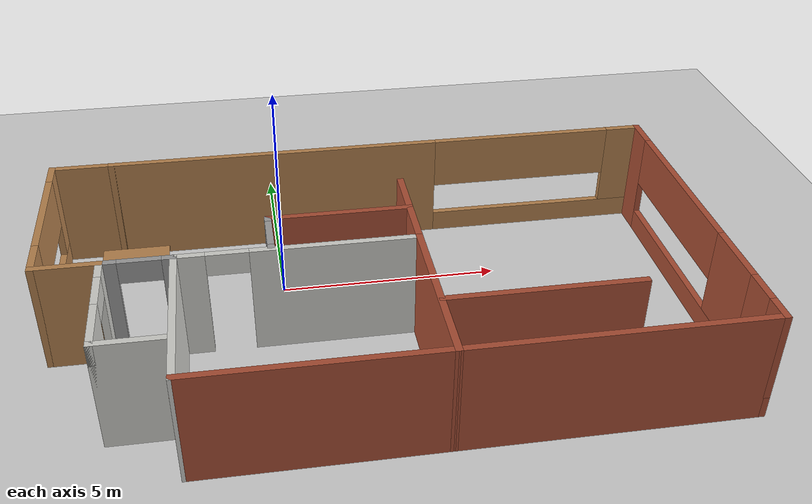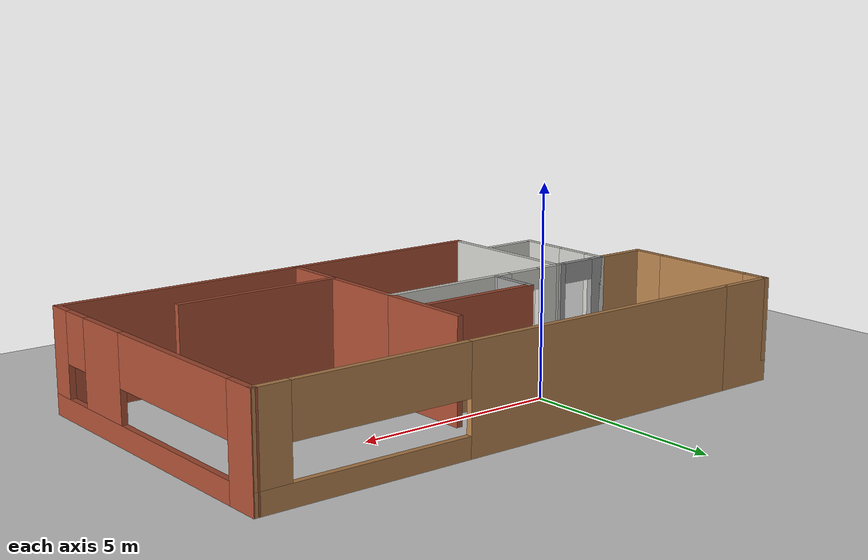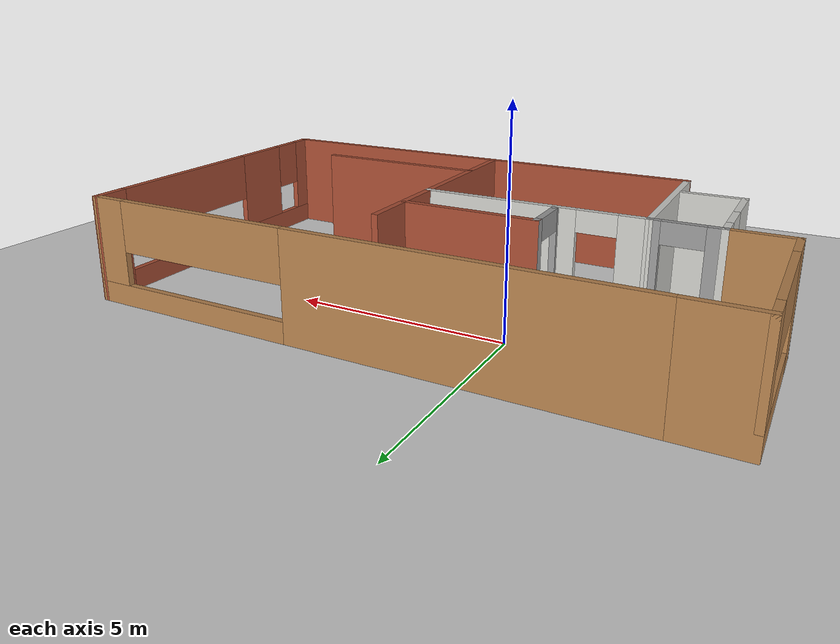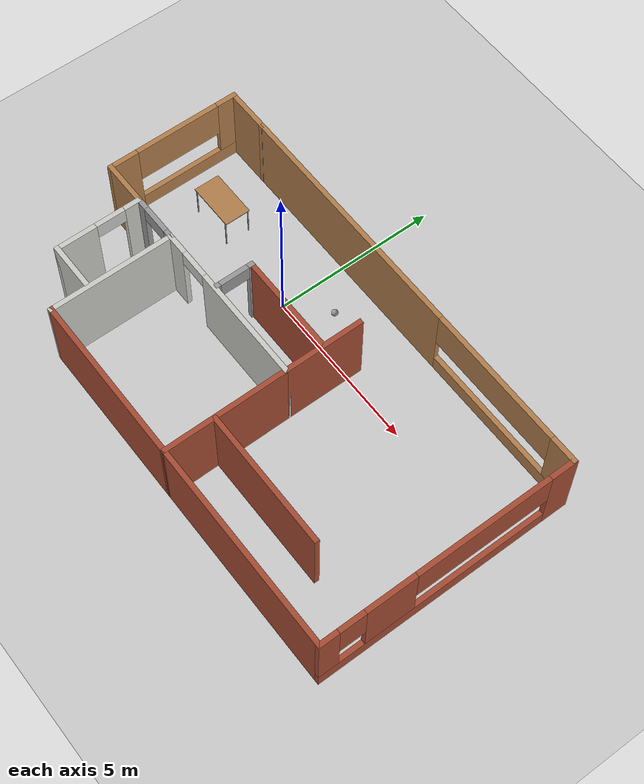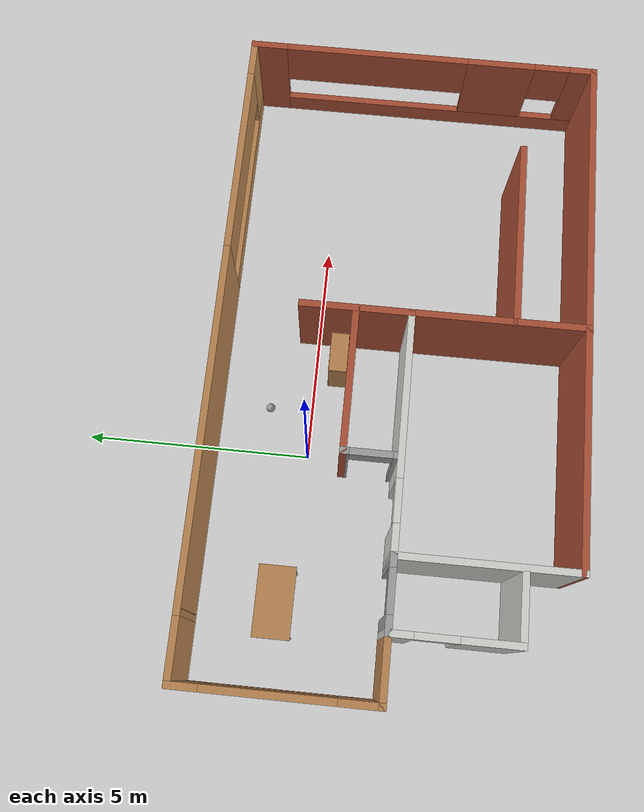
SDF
<sdf version="1.6">
 <world name="default">
  <plugin name="hello" filename="libhello.so"/>
  <light name="sun" type="directional">
   <pose>0 0 10 0 -0 0</pose>
   <diffuse>0.8 0.8 0.8 1</diffuse>
   <specular>0.2 0.2 0.2 1</specular>
   <attenuation>
    <range>1000</range>
    <constant>0.9</constant>
    <linear>0.01</linear>
    <quadratic>0.001</quadratic>
   </attenuation>
   <direction>-0.5 0.1 -0.9</direction>
  </light>
  <model name="ground_plane">
   <static>1</static>
   <link name="link">
    <collision name="collision">
     <geometry><plane><normal>0 0 1</normal><size>100 100</size></plane></geometry>
     <surface><friction><ode><mu>100</mu><mu2>50</mu2></ode></friction></surface>
    </collision>
    <visual name="visual">
     <cast_shadows>0</cast_shadows>
     <geometry><plane><normal>0 0 1</normal><size>100 100</size></plane></geometry>
     <material>
      <script><uri>file://media/materials/scripts/gazebo.material</uri><name>Gazebo/Grey</name></script>
     </material>
    </visual>
   </link>
  </model>
  <gravity>0 0 -9.8</gravity>
  <magnetic_field>6e-06 2.3e-05 -4.2e-05</magnetic_field>
  <atmosphere type="adiabatic"/>
  <physics name="default_physics" default="0" type="ode">
   <max_step_size>0.001</max_step_size>
   <real_time_factor>1</real_time_factor>
   <real_time_update_rate>1000</real_time_update_rate>
  </physics>
  <scene><ambient>0.4 0.4 0.4 1</ambient><background>0.7 0.7 0.7 1</background><shadows>1</shadows></scene>
  <spherical_coordinates>
   <surface_model>EARTH_WGS84</surface_model>
   <latitude_deg>0</latitude_deg>
   <longitude_deg>0</longitude_deg>
   <elevation>0</elevation>
   <heading_deg>0</heading_deg>
  </spherical_coordinates>
  <model name="myplace">
   <pose>1.99043 -1.78813 0 0 -0 0</pose>
   <link name="Wall_56">
    <pose>-5.02365 -0.175493 0 0 -0 3.14159</pose>
    <visual name="Wall_56_Visual_0">
     <pose>-0.660344 0 1.25 0 -0 0</pose>
     <geometry><box><size>0.30723 0.15 2.5</size></box></geometry>
     <material>
      <script><uri>file://media/materials/scripts/gazebo.material</uri><name>Gazebo/Grey</name></script>
      <ambient>1 1 1 1</ambient>
     </material>
     <meta><layer>0</layer></meta>
    </visual>
    <collision name="Wall_56_Collision_0">
     <geometry><box><size>0.30723 0.15 2.5</size></box></geometry>
     <pose>-0.660344 0 1.25 0 -0 0</pose>
    </collision>
    <visual name="Wall_56_Visual_1">
     <pose>0.603615 0 1.25 0 -0 0</pose>
     <geometry><box><size>0.420688 0.15 2.5</size></box></geometry>
     <material>
      <script><uri>file://media/materials/scripts/gazebo.material</uri><name>Gazebo/Grey</name></script>
      <ambient>1 1 1 1</ambient>
     </material>
     <meta><layer>0</layer></meta>
    </visual>
    <collision name="Wall_56_Collision_1">
     <geometry><box><size>0.420688 0.15 2.5</size></box></geometry>
     <pose>0.603615 0 1.25 0 -0 0</pose>
    </collision>
    <visual name="Wall_56_Visual_2">
     <pose>-0.056729 0 2.25 0 -0 0</pose>
     <geometry><box><size>0.9 0.15 0.5</size></box></geometry>
     <material>
      <script><uri>file://media/materials/scripts/gazebo.material</uri><name>Gazebo/Grey</name></script>
      <ambient>1 1 1 1</ambient>
     </material>
     <meta><layer>0</layer></meta>
    </visual>
    <collision name="Wall_56_Collision_2">
     <geometry><box><size>0.9 0.15 0.5</size></box></geometry>
     <pose>-0.056729 0 2.25 0 -0 0</pose>
    </collision>
   </link>
   <link name="Wall_58">
    <pose>0.66434 3.92507 0 0 -0 8.8e-05</pose>
    <visual name="Wall_58_Visual_0">
     <pose>-2.59963 0 1.25 0 -0 0</pose>
     <geometry><box><size>7.80465 0.15 2.5</size></box></geometry>
     <material>
      <script><uri>file://media/materials/scripts/gazebo.material</uri><name>Gazebo/Wood</name></script>
      <ambient>1 1 1 1</ambient>
     </material>
     <meta><layer>0</layer></meta>
    </visual>
    <collision name="Wall_58_Collision_0">
     <geometry><box><size>7.80465 0.15 2.5</size></box></geometry>
     <pose>-2.59963 0 1.25 0 -0 0</pose>
    </collision>
    <visual name="Wall_58_Visual_1">
     <pose>3.90232 0 0.25 0 -0 0</pose>
     <geometry><box><size>5.19925 0.15 0.5</size></box></geometry>
     <material>
      <script><uri>file://media/materials/scripts/gazebo.material</uri><name>Gazebo/Wood</name></script>
      <ambient>1 1 1 1</ambient>
     </material>
     <meta><layer>0</layer></meta>
    </visual>
    <collision name="Wall_58_Collision_1">
     <geometry><box><size>5.19925 0.15 0.5</size></box></geometry>
     <pose>3.90232 0 0.25 0 -0 0</pose>
    </collision>
    <visual name="Wall_58_Visual_2">
     <pose>6.07184 0 1.5 0 -0 0</pose>
     <geometry><box><size>0.860213 0.15 2</size></box></geometry>
     <material>
      <script><uri>file://media/materials/scripts/gazebo.material</uri><name>Gazebo/Wood</name></script>
      <ambient>1 1 1 1</ambient>
     </material>
     <meta><layer>0</layer></meta>
    </visual>
    <collision name="Wall_58_Collision_2">
     <geometry><box><size>0.860213 0.15 2</size></box></geometry>
     <pose>6.07184 0 1.5 0 -0 0</pose>
    </collision>
    <visual name="Wall_58_Visual_3">
     <pose>3.47222 0 1.9 0 -0 0</pose>
     <geometry><box><size>4.33904 0.15 1.2</size></box></geometry>
     <material>
      <script><uri>file://media/materials/scripts/gazebo.material</uri><name>Gazebo/Wood</name></script>
      <ambient>1 1 1 1</ambient>
     </material>
     <meta><layer>0</layer></meta>
    </visual>
    <collision name="Wall_58_Collision_3">
     <geometry><box><size>4.33904 0.15 1.2</size></box></geometry>
     <pose>3.47222 0 1.9 0 -0 0</pose>
    </collision>
   </link>
   <link name="Wall_59">
    <pose>7.11261 0.000633 0 0 0 -1.5708</pose>
    <visual name="Wall_59_Visual_0">
     <pose>-3.58058 0 1.25 0 -0 0</pose>
     <geometry><box><size>0.838846 0.15 2.5</size></box></geometry>
     <material>
      <script><uri>file://media/materials/scripts/gazebo.material</uri><name>Gazebo/Bricks</name></script>
      <ambient>1 1 1 1</ambient>
     </material>
     <meta><layer>0</layer></meta>
    </visual>
    <collision name="Wall_59_Collision_0">
     <geometry><box><size>0.838846 0.15 2.5</size></box></geometry>
     <pose>-3.58058 0 1.25 0 -0 0</pose>
    </collision>
    <visual name="Wall_59_Visual_1">
     <pose>0.419423 0 0.25 0 -0 0</pose>
     <geometry><box><size>7.16115 0.15 0.5</size></box></geometry>
     <material>
      <script><uri>file://media/materials/scripts/gazebo.material</uri><name>Gazebo/Bricks</name></script>
      <ambient>1 1 1 1</ambient>
     </material>
     <meta><layer>0</layer></meta>
    </visual>
    <collision name="Wall_59_Collision_1">
     <geometry><box><size>7.16115 0.15 0.5</size></box></geometry>
     <pose>0.419423 0 0.25 0 -0 0</pose>
    </collision>
    <visual name="Wall_59_Visual_2">
     <pose>1.80126 0 1.5 0 -0 0</pose>
     <geometry><box><size>1.54516 0.15 2</size></box></geometry>
     <material>
      <script><uri>file://media/materials/scripts/gazebo.material</uri><name>Gazebo/Bricks</name></script>
      <ambient>1 1 1 1</ambient>
     </material>
     <meta><layer>0</layer></meta>
    </visual>
    <collision name="Wall_59_Collision_2">
     <geometry><box><size>1.54516 0.15 2</size></box></geometry>
     <pose>1.80126 0 1.5 0 -0 0</pose>
    </collision>
    <visual name="Wall_59_Visual_3">
     <pose>3.68692 0 1.5 0 -0 0</pose>
     <geometry><box><size>0.62616 0.15 2</size></box></geometry>
     <material>
      <script><uri>file://media/materials/scripts/gazebo.material</uri><name>Gazebo/Bricks</name></script>
      <ambient>1 1 1 1</ambient>
     </material>
     <meta><layer>0</layer></meta>
    </visual>
    <collision name="Wall_59_Collision_3">
     <geometry><box><size>0.62616 0.15 2</size></box></geometry>
     <pose>3.68692 0 1.5 0 -0 0</pose>
    </collision>
    <visual name="Wall_59_Visual_4">
     <pose>-1.06624 0 1.9 0 -0 0</pose>
     <geometry><box><size>4.18983 0.15 1.2</size></box></geometry>
     <material>
      <script><uri>file://media/materials/scripts/gazebo.material</uri><name>Gazebo/Bricks</name></script>
      <ambient>1 1 1 1</ambient>
     </material>
     <meta><layer>0</layer></meta>
    </visual>
    <collision name="Wall_59_Collision_4">
     <geometry><box><size>4.18983 0.15 1.2</size></box></geometry>
     <pose>-1.06624 0 1.9 0 -0 0</pose>
    </collision>
    <visual name="Wall_59_Visual_5">
     <pose>2.97384 0 1.9 0 -0 0</pose>
     <geometry><box><size>0.8 0.15 1.2</size></box></geometry>
     <material>
      <script><uri>file://media/materials/scripts/gazebo.material</uri><name>Gazebo/Bricks</name></script>
      <ambient>1 1 1 1</ambient>
     </material>
     <meta><layer>0</layer></meta>
    </visual>
    <collision name="Wall_59_Collision_5">
     <geometry><box><size>0.8 0.15 1.2</size></box></geometry>
     <pose>2.97384 0 1.9 0 -0 0</pose>
    </collision>
   </link>
   <link name="Wall_60">
    <collision name="Wall_60_Collision">
     <geometry><box><size>6.41862 0.15 2.5</size></box></geometry>
     <pose>0 0 1.25 0 -0 0</pose>
    </collision>
    <visual name="Wall_60_Visual">
     <pose>0 0 1.25 0 -0 0</pose>
     <geometry><box><size>6.41862 0.15 2.5</size></box></geometry>
     <material>
      <script><uri>file://media/materials/scripts/gazebo.material</uri><name>Gazebo/Bricks</name></script>
      <ambient>1 1 1 1</ambient>
     </material>
     <meta><layer>0</layer></meta>
    </visual>
    <pose>3.95698 -3.92493 0 0 0 -3.14141</pose>
   </link>
   <link name="Wall_69">
    <pose>-1.73469 -0.175493 0 0 -0 0</pose>
    <visual name="Wall_69_Visual_0">
     <pose>-2.26885 0 1.25 0 -0 0</pose>
     <geometry><box><size>0.712304 0.15 2.5</size></box></geometry>
     <material>
      <script><uri>file://media/materials/scripts/gazebo.material</uri><name>Gazebo/CeilingTiled</name></script>
      <ambient>1 1 1 1</ambient>
     </material>
     <meta><layer>0</layer></meta>
    </visual>
    <collision name="Wall_69_Collision_0">
     <geometry><box><size>0.712304 0.15 2.5</size></box></geometry>
     <pose>-2.26885 0 1.25 0 -0 0</pose>
    </collision>
    <visual name="Wall_69_Visual_1">
     <pose>0.806152 0 1.25 0 -0 0</pose>
     <geometry><box><size>3.6377 0.15 2.5</size></box></geometry>
     <material>
      <script><uri>file://media/materials/scripts/gazebo.material</uri><name>Gazebo/CeilingTiled</name></script>
      <ambient>1 1 1 1</ambient>
     </material>
     <meta><layer>0</layer></meta>
    </visual>
    <collision name="Wall_69_Collision_1">
     <geometry><box><size>3.6377 0.15 2.5</size></box></geometry>
     <pose>0.806152 0 1.25 0 -0 0</pose>
    </collision>
    <visual name="Wall_69_Visual_2">
     <pose>-1.4627 0 2.25 0 -0 0</pose>
     <geometry><box><size>0.9 0.15 0.5</size></box></geometry>
     <material>
      <script><uri>file://media/materials/scripts/gazebo.material</uri><name>Gazebo/CeilingTiled</name></script>
      <ambient>1 1 1 1</ambient>
     </material>
     <meta><layer>0</layer></meta>
    </visual>
    <collision name="Wall_69_Collision_2">
     <geometry><box><size>0.9 0.15 0.5</size></box></geometry>
     <pose>-1.4627 0 2.25 0 -0 0</pose>
    </collision>
   </link>
   <link name="Wall_72">
    <collision name="Wall_72_Collision">
     <geometry><box><size>3.90001 0.15 2.5</size></box></geometry>
     <pose>0 0 1.25 0 -0 0</pose>
    </collision>
    <visual name="Wall_72_Visual">
     <pose>0 0 1.25 0 -0 0</pose>
     <geometry><box><size>3.90001 0.15 2.5</size></box></geometry>
     <material>
      <script><uri>file://media/materials/scripts/gazebo.material</uri><name>Gazebo/Bricks</name></script>
      <ambient>1 1 1 1</ambient>
     </material>
     <meta><layer>0</layer></meta>
    </visual>
    <pose>0.818989 -2.05049 0 0 0 -1.56883</pose>
   </link>
   <link name="Wall_74">
    <collision name="Wall_74_Collision">
     <geometry><box><size>5.25 0.15 2.5</size></box></geometry>
     <pose>0 0 1.25 0 -0 0</pose>
    </collision>
    <visual name="Wall_74_Visual">
     <pose>0 0 1.25 0 -0 0</pose>
     <geometry><box><size>5.25 0.15 2.5</size></box></geometry>
     <material>
      <script><uri>file://media/materials/scripts/gazebo.material</uri><name>Gazebo/Bricks</name></script>
      <ambient>1 1 1 1</ambient>
     </material>
     <meta><layer>0</layer></meta>
    </visual>
    <pose>-1.72733 -3.92549 0 0 -0 3.14159</pose>
   </link>
   <link name="Wall_75">
    <collision name="Wall_75_Collision">
     <geometry><box><size>3.90001 0.15 2.5</size></box></geometry>
     <pose>0 0 1.25 0 -0 0</pose>
    </collision>
    <visual name="Wall_75_Visual">
     <pose>0 0 1.25 0 -0 0</pose>
     <geometry><box><size>3.90001 0.15 2.5</size></box></geometry>
     <material>
      <script><uri>file://media/materials/scripts/gazebo.material</uri><name>Gazebo/CeilingTiled</name></script>
      <ambient>1 1 1 1</ambient>
     </material>
     <meta><layer>0</layer></meta>
    </visual>
    <pose>-4.28101 -2.05049 0 0 -0 1.57276</pose>
   </link>
   <link name="Wall_79">
    <collision name="Wall_79_Collision">
     <geometry><box><size>2.5 0.15 2.5</size></box></geometry>
     <pose>0 0 1.25 0 -0 0</pose>
    </collision>
    <visual name="Wall_79_Visual">
     <pose>0 0 1.25 0 -0 0</pose>
     <geometry><box><size>2.5 0.15 2.5</size></box></geometry>
     <material>
      <script><uri>file://media/materials/scripts/gazebo.material</uri><name>Gazebo/Bricks</name></script>
      <ambient>1 1 1 1</ambient>
     </material>
     <meta><layer>0</layer></meta>
    </visual>
    <pose>0.815308 0.999507 0 0 -0 1.5708</pose>
   </link>
   <link name="Wall_81">
    <collision name="Wall_81_Collision">
     <geometry><box><size>4.25 0.15 2.5</size></box></geometry>
     <pose>0 0 1.25 0 -0 0</pose>
    </collision>
    <visual name="Wall_81_Visual">
     <pose>0 0 1.25 0 -0 0</pose>
     <geometry><box><size>4.25 0.15 2.5</size></box></geometry>
     <material>
      <script><uri>file://media/materials/scripts/gazebo.material</uri><name>Gazebo/Bricks</name></script>
      <ambient>1 1 1 1</ambient>
     </material>
     <meta><layer>0</layer></meta>
    </visual>
    <pose>2.90335 -2.39757 0 0 -0 0</pose>
   </link>
   <link name="Wall_83">
    <collision name="Wall_83_Collision">
     <geometry><box><size>3.25 0.15 2.5</size></box></geometry>
     <pose>0 0 1.25 0 -0 0</pose>
    </collision>
    <visual name="Wall_83_Visual">
     <pose>0 0 1.25 0 -0 0</pose>
     <geometry><box><size>3.25 0.15 2.5</size></box></geometry>
     <material>
      <script><uri>file://media/materials/scripts/gazebo.material</uri><name>Gazebo/Bricks</name></script>
      <ambient>1 1 1 1</ambient>
     </material>
     <meta><layer>0</layer></meta>
    </visual>
    <pose>-0.739288 1.01357 0 0 -0 3.14159</pose>
   </link>
   <link name="Wall_84">
    <pose>-2.28929 0.463574 0 0 0 -1.5708</pose>
    <visual name="Wall_84_Visual_0">
     <pose>-0.524684 0 1.25 0 -0 0</pose>
     <geometry><box><size>0.200631 0.15 2.5</size></box></geometry>
     <material>
      <script><uri>file://media/materials/scripts/gazebo.material</uri><name>Gazebo/Grey</name></script>
      <ambient>1 1 1 1</ambient>
     </material>
     <meta><layer>0</layer></meta>
    </visual>
    <collision name="Wall_84_Collision_0">
     <geometry><box><size>0.200631 0.15 2.5</size></box></geometry>
     <pose>-0.524684 0 1.25 0 -0 0</pose>
    </collision>
    <visual name="Wall_84_Visual_1">
     <pose>0.550316 0 1.25 0 -0 0</pose>
     <geometry><box><size>0.149369 0.15 2.5</size></box></geometry>
     <material>
      <script><uri>file://media/materials/scripts/gazebo.material</uri><name>Gazebo/Grey</name></script>
      <ambient>1 1 1 1</ambient>
     </material>
     <meta><layer>0</layer></meta>
    </visual>
    <collision name="Wall_84_Collision_1">
     <geometry><box><size>0.149369 0.15 2.5</size></box></geometry>
     <pose>0.550316 0 1.25 0 -0 0</pose>
    </collision>
    <visual name="Wall_84_Visual_2">
     <pose>0.025631 0 2.25 0 -0 0</pose>
     <geometry><box><size>0.9 0.15 0.5</size></box></geometry>
     <material>
      <script><uri>file://media/materials/scripts/gazebo.material</uri><name>Gazebo/Grey</name></script>
      <ambient>1 1 1 1</ambient>
     </material>
     <meta><layer>0</layer></meta>
    </visual>
    <collision name="Wall_84_Collision_2">
     <geometry><box><size>0.9 0.15 0.5</size></box></geometry>
     <pose>0.025631 0 2.25 0 -0 0</pose>
    </collision>
   </link>
   <link name="Wall_86">
    <pose>-5.76261 -1.47549 0 0 0 -1.5708</pose>
    <visual name="Wall_86_Visual_0">
     <pose>-1.09105 0 1.25 0 -0 0</pose>
     <geometry><box><size>0.567901 0.15 2.5</size></box></geometry>
     <material>
      <script><uri>file://media/materials/scripts/gazebo.material</uri><name>Gazebo/CeilingTiled</name></script>
      <ambient>1 1 1 1</ambient>
     </material>
     <meta><layer>0</layer></meta>
    </visual>
    <collision name="Wall_86_Collision_0">
     <geometry><box><size>0.567901 0.15 2.5</size></box></geometry>
     <pose>-1.09105 0 1.25 0 -0 0</pose>
    </collision>
    <visual name="Wall_86_Visual_1">
     <pose>0.73395 0 1.25 0 -0 0</pose>
     <geometry><box><size>1.2821 0.15 2.5</size></box></geometry>
     <material>
      <script><uri>file://media/materials/scripts/gazebo.material</uri><name>Gazebo/CeilingTiled</name></script>
      <ambient>1 1 1 1</ambient>
     </material>
     <meta><layer>0</layer></meta>
    </visual>
    <collision name="Wall_86_Collision_1">
     <geometry><box><size>1.2821 0.15 2.5</size></box></geometry>
     <pose>0.73395 0 1.25 0 -0 0</pose>
    </collision>
    <visual name="Wall_86_Visual_2">
     <pose>-0.357099 0 2.25 0 -0 0</pose>
     <geometry><box><size>0.9 0.15 0.5</size></box></geometry>
     <material>
      <script><uri>file://media/materials/scripts/gazebo.material</uri><name>Gazebo/CeilingTiled</name></script>
      <ambient>1 1 1 1</ambient>
     </material>
     <meta><layer>0</layer></meta>
    </visual>
    <collision name="Wall_86_Collision_2">
     <geometry><box><size>0.9 0.15 0.5</size></box></geometry>
     <pose>-0.357099 0 2.25 0 -0 0</pose>
    </collision>
   </link>
   <link name="Wall_87">
    <collision name="Wall_87_Collision">
     <geometry><box><size>1.5 0.15 2.5</size></box></geometry>
     <pose>0 0 1.25 0 -0 0</pose>
    </collision>
    <visual name="Wall_87_Visual">
     <pose>0 0 1.25 0 -0 0</pose>
     <geometry><box><size>1.5 0.15 2.5</size></box></geometry>
     <material>
      <script><uri>file://media/materials/scripts/gazebo.material</uri><name>Gazebo/CeilingTiled</name></script>
      <ambient>1 1 1 1</ambient>
     </material>
     <meta><layer>0</layer></meta>
    </visual>
    <pose>-5.08761 -2.77549 0 0 -0 0</pose>
   </link>
   <link name="Wall_89">
    <collision name="Wall_89_Collision">
     <geometry><box><size>1.5 0.15 2.5</size></box></geometry>
     <pose>0 0 1.25 0 -0 0</pose>
    </collision>
    <visual name="Wall_89_Visual">
     <pose>0 0 1.25 0 -0 0</pose>
     <geometry><box><size>1.5 0.15 2.5</size></box></geometry>
     <material>
      <script><uri>file://media/materials/scripts/gazebo.material</uri><name>Gazebo/Wood</name></script>
      <ambient>1 1 1 1</ambient>
     </material>
     <meta><layer>0</layer></meta>
    </visual>
    <pose>-6.43761 -0.175493 0 0 -0 3.14159</pose>
   </link>
   <link name="Wall_90">
    <pose>-7.11261 1.87451 0 0 -0 1.5708</pose>
    <visual name="Wall_90_Visual_0">
     <pose>-1.66099 0 1.25 0 -0 0</pose>
     <geometry><box><size>0.928026 0.15 2.5</size></box></geometry>
     <material>
      <script><uri>file://media/materials/scripts/gazebo.material</uri><name>Gazebo/Wood</name></script>
      <ambient>1 1 1 1</ambient>
     </material>
     <meta><layer>0</layer></meta>
    </visual>
    <collision name="Wall_90_Collision_0">
     <geometry><box><size>0.928026 0.15 2.5</size></box></geometry>
     <pose>-1.66099 0 1.25 0 -0 0</pose>
    </collision>
    <visual name="Wall_90_Visual_1">
     <pose>0.464013 0 0.25 0 -0 0</pose>
     <geometry><box><size>3.32197 0.15 0.5</size></box></geometry>
     <material>
      <script><uri>file://media/materials/scripts/gazebo.material</uri><name>Gazebo/Wood</name></script>
      <ambient>1 1 1 1</ambient>
     </material>
     <meta><layer>0</layer></meta>
    </visual>
    <collision name="Wall_90_Collision_1">
     <geometry><box><size>3.32197 0.15 0.5</size></box></geometry>
     <pose>0.464013 0 0.25 0 -0 0</pose>
    </collision>
    <visual name="Wall_90_Visual_2">
     <pose>1.79142 0 1.5 0 -0 0</pose>
     <geometry><box><size>0.667162 0.15 2</size></box></geometry>
     <material>
      <script><uri>file://media/materials/scripts/gazebo.material</uri><name>Gazebo/Wood</name></script>
      <ambient>1 1 1 1</ambient>
     </material>
     <meta><layer>0</layer></meta>
    </visual>
    <collision name="Wall_90_Collision_2">
     <geometry><box><size>0.667162 0.15 2</size></box></geometry>
     <pose>1.79142 0 1.5 0 -0 0</pose>
    </collision>
    <visual name="Wall_90_Visual_3">
     <pose>0.130432 0 1.9 0 -0 0</pose>
     <geometry><box><size>2.65481 0.15 1.2</size></box></geometry>
     <material>
      <script><uri>file://media/materials/scripts/gazebo.material</uri><name>Gazebo/Wood</name></script>
      <ambient>1 1 1 1</ambient>
     </material>
     <meta><layer>0</layer></meta>
    </visual>
    <collision name="Wall_90_Collision_3">
     <geometry><box><size>2.65481 0.15 1.2</size></box></geometry>
     <pose>0.130432 0 1.9 0 -0 0</pose>
    </collision>
   </link>
   <link name="Wall_91">
    <collision name="Wall_91_Collision">
     <geometry><box><size>1.5 0.15 2.5</size></box></geometry>
     <pose>0 0 1.25 0 -0 0</pose>
    </collision>
    <visual name="Wall_91_Visual">
     <pose>0 0 1.25 0 -0 0</pose>
     <geometry><box><size>1.5 0.15 2.5</size></box></geometry>
     <material>
      <script><uri>file://media/materials/scripts/gazebo.material</uri><name>Gazebo/Wood</name></script>
      <ambient>1 1 1 1</ambient>
     </material>
     <meta><layer>0</layer></meta>
    </visual>
    <pose>-6.43761 3.92451 0 0 -0 0</pose>
   </link>
   <static>1</static>
  </model>
  <model name="table">
   <static>1</static>
   <link name="link">
    <collision name="surface">
     <pose>0 0 1 0 -0 0</pose>
     <geometry><box><size>1.5 0.8 0.03</size></box></geometry>
     <surface><friction><ode><mu>0.6</mu><mu2>0.6</mu2></ode></friction></surface>
    </collision>
    <visual name="visual1">
     <pose>0 0 1 0 -0 0</pose>
     <geometry><box><size>1.5 0.8 0.03</size></box></geometry>
     <material>
      <script><uri>file://media/materials/scripts/gazebo.material</uri><name>Gazebo/Wood</name></script>
     </material>
    </visual>
    <collision name="front_left_leg">
     <pose>0.68 0.38 0.5 0 -0 0</pose>
     <geometry><cylinder><radius>0.02</radius><length>1</length></cylinder></geometry>
    </collision>
    <visual name="front_left_leg">
     <pose>0.68 0.38 0.5 0 -0 0</pose>
     <geometry><cylinder><radius>0.02</radius><length>1</length></cylinder></geometry>
     <material>
      <script><uri>file://media/materials/scripts/gazebo.material</uri><name>Gazebo/Grey</name></script>
     </material>
    </visual>
    <collision name="front_right_leg">
     <pose>0.68 -0.38 0.5 0 -0 0</pose>
     <geometry><cylinder><radius>0.02</radius><length>1</length></cylinder></geometry>
    </collision>
    <visual name="front_right_leg">
     <pose>0.68 -0.38 0.5 0 -0 0</pose>
     <geometry><cylinder><radius>0.02</radius><length>1</length></cylinder></geometry>
     <material>
      <script><uri>file://media/materials/scripts/gazebo.material</uri><name>Gazebo/Grey</name></script>
     </material>
    </visual>
    <collision name="back_right_leg">
     <pose>-0.68 -0.38 0.5 0 -0 0</pose>
     <geometry><cylinder><radius>0.02</radius><length>1</length></cylinder></geometry>
    </collision>
    <visual name="back_right_leg">
     <pose>-0.68 -0.38 0.5 0 -0 0</pose>
     <geometry><cylinder><radius>0.02</radius><length>1</length></cylinder></geometry>
     <material>
      <script><uri>file://media/materials/scripts/gazebo.material</uri><name>Gazebo/Grey</name></script>
     </material>
    </visual>
    <collision name="back_left_leg">
     <pose>-0.68 0.38 0.5 0 -0 0</pose>
     <geometry><cylinder><radius>0.02</radius><length>1</length></cylinder></geometry>
    </collision>
    <visual name="back_left_leg">
     <pose>-0.68 0.38 0.5 0 -0 0</pose>
     <geometry><cylinder><radius>0.02</radius><length>1</length></cylinder></geometry>
     <material>
      <script><uri>file://media/materials/scripts/gazebo.material</uri><name>Gazebo/Grey</name></script>
     </material>
    </visual>
   </link>
   <pose>-3.31314 0.360386 0 0 -0 0</pose>
  </model>
  <model name="bookshelf">
   <static>1</static>
   <link name="link">
    <inertial><mass>1</mass></inertial>
    <collision name="back">
     <pose>0 0.005 0.6 0 -0 0</pose>
     <geometry><box><size>0.9 0.01 1.2</size></box></geometry>
    </collision>
    <visual name="visual1">
     <pose>0 0.005 0.6 0 -0 0</pose>
     <geometry><box><size>0.9 0.01 1.2</size></box></geometry>
     <material>
      <script><uri>file://media/materials/scripts/gazebo.material</uri><name>Gazebo/Wood</name></script>
     </material>
    </visual>
    <collision name="left_side">
     <pose>0.45 -0.195 0.6 0 -0 0</pose>
     <geometry><box><size>0.02 0.4 1.2</size></box></geometry>
    </collision>
    <visual name="visual2">
     <pose>0.45 -0.195 0.6 0 -0 0</pose>
     <geometry><box><size>0.02 0.4 1.2</size></box></geometry>
     <material>
      <script><uri>file://media/materials/scripts/gazebo.material</uri><name>Gazebo/Wood</name></script>
     </material>
    </visual>
    <collision name="right_side">
     <pose>-0.45 -0.195 0.6 0 -0 0</pose>
     <geometry><box><size>0.02 0.4 1.2</size></box></geometry>
    </collision>
    <visual name="visual3">
     <pose>-0.45 -0.195 0.6 0 -0 0</pose>
     <geometry><box><size>0.02 0.4 1.2</size></box></geometry>
     <material>
      <script><uri>file://media/materials/scripts/gazebo.material</uri><name>Gazebo/Wood</name></script>
     </material>
    </visual>
    <collision name="bottom">
     <pose>0 -0.195 0.03 0 -0 0</pose>
     <geometry><box><size>0.88 0.4 0.06</size></box></geometry>
    </collision>
    <visual name="visual4">
     <pose>0 -0.195 0.03 0 -0 0</pose>
     <geometry><box><size>0.88 0.4 0.06</size></box></geometry>
     <material>
      <script><uri>file://media/materials/scripts/gazebo.material</uri><name>Gazebo/Wood</name></script>
     </material>
    </visual>
    <collision name="top">
     <pose>0 -0.195 1.19 0 -0 0</pose>
     <geometry><box><size>0.88 0.4 0.02</size></box></geometry>
    </collision>
    <visual name="visual5">
     <pose>0 -0.195 1.19 0 -0 0</pose>
     <geometry><box><size>0.88 0.4 0.02</size></box></geometry>
     <material>
      <script><uri>file://media/materials/scripts/gazebo.material</uri><name>Gazebo/Wood</name></script>
     </material>
    </visual>
    <collision name="low_shelf">
     <pose>0 -0.195 0.43 0 -0 0</pose>
     <geometry><box><size>0.88 0.4 0.02</size></box></geometry>
    </collision>
    <visual name="visual6">
     <pose>0 -0.195 0.43 0 -0 0</pose>
     <geometry><box><size>0.88 0.4 0.02</size></box></geometry>
     <material>
      <script><uri>file://media/materials/scripts/gazebo.material</uri><name>Gazebo/Wood</name></script>
     </material>
    </visual>
    <collision name="high_shelf">
     <pose>0 -0.195 0.8 0 -0 0</pose>
     <geometry><box><size>0.88 0.4 0.02</size></box></geometry>
    </collision>
    <visual name="visual7">
     <pose>0 -0.195 0.8 0 -0 0</pose>
     <geometry><box><size>0.88 0.4 0.02</size></box></geometry>
     <material>
      <script><uri>file://media/materials/scripts/gazebo.material</uri><name>Gazebo/Wood</name></script>
     </material>
    </visual>
   </link>
   <pose>2.20301 -0.290207 0 0 -0 0</pose>
  </model>
  <model name="my_ball">
   <link name="link_0">
    <inertial>
     <mass>1</mass>
     <inertia><ixx>0.1</ixx><ixy>0</ixy><ixz>0</ixz><iyy>0.1</iyy><iyz>0</iyz><izz>0.1</izz></inertia>
    </inertial>
    <visual name="visual">
     <geometry><sphere><radius>0.1</radius></sphere></geometry>
     <material>
      <lighting>1</lighting>
      <script><uri>file://media/materials/scripts/gazebo.material</uri><name>Gazebo/Grey</name></script>
      <ambient>1 1 1 1</ambient>
      <diffuse>1 1 1 1</diffuse>
      <specular>1 1 1 1</specular>
      <emissive>1 1 1 1</emissive>
      <shader type="vertex"><normal_map>__default__</normal_map></shader>
     </material>
    </visual>
    <collision name="collision">
     <geometry><sphere><radius>0.1</radius></sphere></geometry>
     <surface>
      <friction>
       <ode><mu>1</mu><mu2>1</mu2><fdir1>0 0 0</fdir1><slip1>0</slip1><slip2>0</slip2></ode>
       <torsional>
        <coefficient>1</coefficient>
        <patch_radius>0</patch_radius>
        <surface_radius>0</surface_radius>
        <use_patch_radius>1</use_patch_radius>
        <ode><slip>0</slip></ode>
       </torsional>
      </friction>
      <bounce><restitution_coefficient>0</restitution_coefficient><threshold>1e+06</threshold></bounce>
      <contact>
       <collide_without_contact>0</collide_without_contact>
       <collide_without_contact_bitmask>1</collide_without_contact_bitmask>
       <collide_bitmask>1</collide_bitmask>
       <ode>
        <soft_cfm>0</soft_cfm>
        <soft_erp>0.2</soft_erp>
        <kp>1e+13</kp>
        <kd>1</kd>
        <max_vel>0.01</max_vel>
        <min_depth>0</min_depth>
       </ode>
       <bullet>
        <split_impulse>1</split_impulse>
        <split_impulse_penetration_threshold>-0.01</split_impulse_penetration_threshold>
        <soft_cfm>0</soft_cfm>
        <soft_erp>0.2</soft_erp>
        <kp>1e+13</kp>
        <kd>1</kd>
       </bullet>
      </contact>
     </surface>
    </collision>
   </link>
   <static>0</static>
   <pose>1.06125 0.971337 0.1 0 -0 0</pose>
  </model>
 </world>
</sdf>
